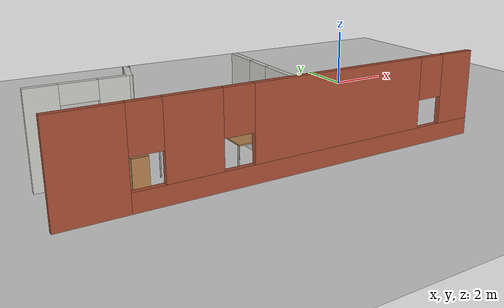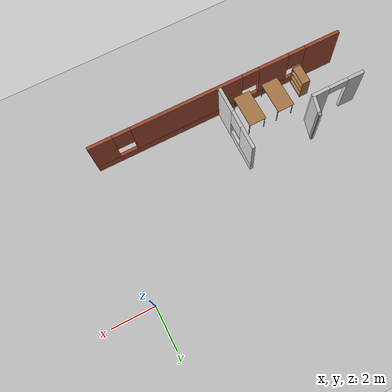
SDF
<sdf version="1.6">
 <world name="default">
  <model name="ground_plane">
   <static>1</static>
   <link name="link">
    <collision name="collision">
     <geometry><plane><normal>0 0 1</normal><size>100 100</size></plane></geometry>
     <surface><friction><ode><mu>100</mu><mu2>50</mu2></ode></friction></surface>
    </collision>
    <visual name="visual">
     <cast_shadows>0</cast_shadows>
     <geometry><plane><normal>0 0 1</normal><size>100 100</size></plane></geometry>
     <material>
      <script><uri>file://media/materials/scripts/gazebo.material</uri><name>Gazebo/Grey</name></script>
     </material>
    </visual>
   </link>
  </model>
  <model name="Building">
   <link name="Wall_1">
    <pose>-0.039438 -5.95 0 0 -0 0</pose>
    <visual name="Wall_1_Visual_4">
     <pose>5.31994 0 1.5 0 -0 0</pose>
     <geometry><box><size>1.11013 0.15 2</size></box></geometry>
     <material>
      <script><uri>file://media/materials/scripts/gazebo.material</uri><name>Gazebo/Bricks</name></script>
      <ambient>1 1 1 1</ambient>
      <shader type="pixel"/>
      <diffuse>1 1 1 1</diffuse>
      <specular>0.2 0.2 0.2 1</specular>
      <emissive>0 0 0 1</emissive>
     </material>
     <meta><layer>0</layer></meta>
    </visual>
    <visual name="Wall_1_Visual_0">
     <pose>-5.03898 0 1.25 0 -0 0</pose>
     <geometry><box><size>1.67205 0.15 2.5</size></box></geometry>
     <material>
      <script><uri>file://media/materials/scripts/gazebo.material</uri><name>Gazebo/Bricks</name></script>
      <ambient>1 1 1 1</ambient>
      <shader type="pixel"/>
      <diffuse>1 1 1 1</diffuse>
      <specular>0.2 0.2 0.2 1</specular>
      <emissive>0 0 0 1</emissive>
     </material>
     <meta><layer>0</layer></meta>
    </visual>
    <visual name="Wall_1_Visual_1">
     <pose>0.836024 0 0.25 0 -0 0</pose>
     <geometry><box><size>10.078 0.15 0.5</size></box></geometry>
     <material>
      <script><uri>file://media/materials/scripts/gazebo.material</uri><name>Gazebo/Bricks</name></script>
      <ambient>1 1 1 1</ambient>
      <shader type="pixel"/>
      <diffuse>1 1 1 1</diffuse>
      <specular>0.2 0.2 0.2 1</specular>
      <emissive>0 0 0 1</emissive>
     </material>
     <meta><layer>0</layer></meta>
    </visual>
    <visual name="Wall_1_Visual_2">
     <pose>-2.69545 0 1.5 0 -0 0</pose>
     <geometry><box><size>1.415 0.15 2</size></box></geometry>
     <material>
      <script><uri>file://media/materials/scripts/gazebo.material</uri><name>Gazebo/Bricks</name></script>
      <ambient>1 1 1 1</ambient>
      <shader type="pixel"/>
      <diffuse>1 1 1 1</diffuse>
      <specular>0.2 0.2 0.2 1</specular>
      <emissive>0 0 0 1</emissive>
     </material>
     <meta><layer>0</layer></meta>
    </visual>
    <visual name="Wall_1_Visual_3">
     <pose>1.38846 0 1.5 0 -0 0</pose>
     <geometry><box><size>5.15282 0.15 2</size></box></geometry>
     <material>
      <script><uri>file://media/materials/scripts/gazebo.material</uri><name>Gazebo/Bricks</name></script>
      <ambient>1 1 1 1</ambient>
      <shader type="pixel"/>
      <diffuse>1 1 1 1</diffuse>
      <specular>0.2 0.2 0.2 1</specular>
      <emissive>0 0 0 1</emissive>
     </material>
     <meta><layer>0</layer></meta>
    </visual>
    <visual name="Wall_1_Visual_5">
     <pose>-3.80295 0 1.9 0 -0 0</pose>
     <geometry><box><size>0.8 0.15 1.2</size></box></geometry>
     <material>
      <script><uri>file://media/materials/scripts/gazebo.material</uri><name>Gazebo/Bricks</name></script>
      <ambient>1 1 1 1</ambient>
      <shader type="pixel"/>
      <diffuse>1 1 1 1</diffuse>
      <specular>0.2 0.2 0.2 1</specular>
      <emissive>0 0 0 1</emissive>
     </material>
     <meta><layer>0</layer></meta>
    </visual>
    <visual name="Wall_1_Visual_6">
     <pose>-1.58795 0 1.9 0 -0 0</pose>
     <geometry><box><size>0.8 0.15 1.2</size></box></geometry>
     <material>
      <script><uri>file://media/materials/scripts/gazebo.material</uri><name>Gazebo/Bricks</name></script>
      <ambient>1 1 1 1</ambient>
      <shader type="pixel"/>
      <diffuse>1 1 1 1</diffuse>
      <specular>0.2 0.2 0.2 1</specular>
      <emissive>0 0 0 1</emissive>
     </material>
     <meta><layer>0</layer></meta>
    </visual>
    <visual name="Wall_1_Visual_7">
     <pose>4.36487 0 1.9 0 -0 0</pose>
     <geometry><box><size>0.8 0.15 1.2</size></box></geometry>
     <material>
      <script><uri>file://media/materials/scripts/gazebo.material</uri><name>Gazebo/Bricks</name></script>
      <ambient>1 1 1 1</ambient>
      <shader type="pixel"/>
      <diffuse>1 1 1 1</diffuse>
      <specular>0.2 0.2 0.2 1</specular>
      <emissive>0 0 0 1</emissive>
     </material>
     <meta><layer>0</layer></meta>
    </visual>
    <collision name="Wall_1_Collision_0">
     <pose>-5.03898 0 1.25 0 -0 0</pose>
     <geometry><box><size>1.67205 0.15 2.5</size></box></geometry>
     <surface>
      <friction>
       <ode><mu>1</mu><mu2>1</mu2><fdir1>0 0 0</fdir1><slip1>0</slip1><slip2>0</slip2></ode>
       <torsional>
        <coefficient>1</coefficient>
        <patch_radius>0</patch_radius>
        <surface_radius>0</surface_radius>
        <use_patch_radius>1</use_patch_radius>
        <ode><slip>0</slip></ode>
       </torsional>
      </friction>
      <bounce><restitution_coefficient>0</restitution_coefficient><threshold>1e+06</threshold></bounce>
      <contact>
       <collide_without_contact>0</collide_without_contact>
       <collide_without_contact_bitmask>1</collide_without_contact_bitmask>
       <collide_bitmask>1</collide_bitmask>
       <ode>
        <soft_cfm>0</soft_cfm>
        <soft_erp>0.2</soft_erp>
        <kp>1e+13</kp>
        <kd>1</kd>
        <max_vel>0.01</max_vel>
        <min_depth>0</min_depth>
       </ode>
       <bullet>
        <split_impulse>1</split_impulse>
        <split_impulse_penetration_threshold>-0.01</split_impulse_penetration_threshold>
        <soft_cfm>0</soft_cfm>
        <soft_erp>0.2</soft_erp>
        <kp>1e+13</kp>
        <kd>1</kd>
       </bullet>
      </contact>
     </surface>
    </collision>
    <collision name="Wall_1_Collision_1">
     <pose>0.836024 0 0.25 0 -0 0</pose>
     <geometry><box><size>10.078 0.15 0.5</size></box></geometry>
     <surface>
      <friction>
       <ode><mu>1</mu><mu2>1</mu2><fdir1>0 0 0</fdir1><slip1>0</slip1><slip2>0</slip2></ode>
       <torsional>
        <coefficient>1</coefficient>
        <patch_radius>0</patch_radius>
        <surface_radius>0</surface_radius>
        <use_patch_radius>1</use_patch_radius>
        <ode><slip>0</slip></ode>
       </torsional>
      </friction>
      <bounce><restitution_coefficient>0</restitution_coefficient><threshold>1e+06</threshold></bounce>
      <contact>
       <collide_without_contact>0</collide_without_contact>
       <collide_without_contact_bitmask>1</collide_without_contact_bitmask>
       <collide_bitmask>1</collide_bitmask>
       <ode>
        <soft_cfm>0</soft_cfm>
        <soft_erp>0.2</soft_erp>
        <kp>1e+13</kp>
        <kd>1</kd>
        <max_vel>0.01</max_vel>
        <min_depth>0</min_depth>
       </ode>
       <bullet>
        <split_impulse>1</split_impulse>
        <split_impulse_penetration_threshold>-0.01</split_impulse_penetration_threshold>
        <soft_cfm>0</soft_cfm>
        <soft_erp>0.2</soft_erp>
        <kp>1e+13</kp>
        <kd>1</kd>
       </bullet>
      </contact>
     </surface>
    </collision>
    <collision name="Wall_1_Collision_5">
     <pose>-3.80295 0 1.9 0 -0 0</pose>
     <geometry><box><size>0.8 0.15 1.2</size></box></geometry>
     <surface>
      <friction>
       <ode><mu>1</mu><mu2>1</mu2><fdir1>0 0 0</fdir1><slip1>0</slip1><slip2>0</slip2></ode>
       <torsional>
        <coefficient>1</coefficient>
        <patch_radius>0</patch_radius>
        <surface_radius>0</surface_radius>
        <use_patch_radius>1</use_patch_radius>
        <ode><slip>0</slip></ode>
       </torsional>
      </friction>
      <bounce><restitution_coefficient>0</restitution_coefficient><threshold>1e+06</threshold></bounce>
      <contact>
       <collide_without_contact>0</collide_without_contact>
       <collide_without_contact_bitmask>1</collide_without_contact_bitmask>
       <collide_bitmask>1</collide_bitmask>
       <ode>
        <soft_cfm>0</soft_cfm>
        <soft_erp>0.2</soft_erp>
        <kp>1e+13</kp>
        <kd>1</kd>
        <max_vel>0.01</max_vel>
        <min_depth>0</min_depth>
       </ode>
       <bullet>
        <split_impulse>1</split_impulse>
        <split_impulse_penetration_threshold>-0.01</split_impulse_penetration_threshold>
        <soft_cfm>0</soft_cfm>
        <soft_erp>0.2</soft_erp>
        <kp>1e+13</kp>
        <kd>1</kd>
       </bullet>
      </contact>
     </surface>
    </collision>
    <collision name="Wall_1_Collision_2">
     <pose>-2.69545 0 1.5 0 -0 0</pose>
     <geometry><box><size>1.415 0.15 2</size></box></geometry>
     <surface>
      <friction>
       <ode><mu>1</mu><mu2>1</mu2><fdir1>0 0 0</fdir1><slip1>0</slip1><slip2>0</slip2></ode>
       <torsional>
        <coefficient>1</coefficient>
        <patch_radius>0</patch_radius>
        <surface_radius>0</surface_radius>
        <use_patch_radius>1</use_patch_radius>
        <ode><slip>0</slip></ode>
       </torsional>
      </friction>
      <bounce><restitution_coefficient>0</restitution_coefficient><threshold>1e+06</threshold></bounce>
      <contact>
       <collide_without_contact>0</collide_without_contact>
       <collide_without_contact_bitmask>1</collide_without_contact_bitmask>
       <collide_bitmask>1</collide_bitmask>
       <ode>
        <soft_cfm>0</soft_cfm>
        <soft_erp>0.2</soft_erp>
        <kp>1e+13</kp>
        <kd>1</kd>
        <max_vel>0.01</max_vel>
        <min_depth>0</min_depth>
       </ode>
       <bullet>
        <split_impulse>1</split_impulse>
        <split_impulse_penetration_threshold>-0.01</split_impulse_penetration_threshold>
        <soft_cfm>0</soft_cfm>
        <soft_erp>0.2</soft_erp>
        <kp>1e+13</kp>
        <kd>1</kd>
       </bullet>
      </contact>
     </surface>
    </collision>
    <collision name="Wall_1_Collision_3">
     <pose>1.38846 0 1.5 0 -0 0</pose>
     <geometry><box><size>5.15282 0.15 2</size></box></geometry>
     <surface>
      <friction>
       <ode><mu>1</mu><mu2>1</mu2><fdir1>0 0 0</fdir1><slip1>0</slip1><slip2>0</slip2></ode>
       <torsional>
        <coefficient>1</coefficient>
        <patch_radius>0</patch_radius>
        <surface_radius>0</surface_radius>
        <use_patch_radius>1</use_patch_radius>
        <ode><slip>0</slip></ode>
       </torsional>
      </friction>
      <bounce><restitution_coefficient>0</restitution_coefficient><threshold>1e+06</threshold></bounce>
      <contact>
       <collide_without_contact>0</collide_without_contact>
       <collide_without_contact_bitmask>1</collide_without_contact_bitmask>
       <collide_bitmask>1</collide_bitmask>
       <ode>
        <soft_cfm>0</soft_cfm>
        <soft_erp>0.2</soft_erp>
        <kp>1e+13</kp>
        <kd>1</kd>
        <max_vel>0.01</max_vel>
        <min_depth>0</min_depth>
       </ode>
       <bullet>
        <split_impulse>1</split_impulse>
        <split_impulse_penetration_threshold>-0.01</split_impulse_penetration_threshold>
        <soft_cfm>0</soft_cfm>
        <soft_erp>0.2</soft_erp>
        <kp>1e+13</kp>
        <kd>1</kd>
       </bullet>
      </contact>
     </surface>
    </collision>
    <collision name="Wall_1_Collision_4">
     <pose>5.31994 0 1.5 0 -0 0</pose>
     <geometry><box><size>1.11013 0.15 2</size></box></geometry>
     <surface>
      <friction>
       <ode><mu>1</mu><mu2>1</mu2><fdir1>0 0 0</fdir1><slip1>0</slip1><slip2>0</slip2></ode>
       <torsional>
        <coefficient>1</coefficient>
        <patch_radius>0</patch_radius>
        <surface_radius>0</surface_radius>
        <use_patch_radius>1</use_patch_radius>
        <ode><slip>0</slip></ode>
       </torsional>
      </friction>
      <bounce><restitution_coefficient>0</restitution_coefficient><threshold>1e+06</threshold></bounce>
      <contact>
       <collide_without_contact>0</collide_without_contact>
       <collide_without_contact_bitmask>1</collide_without_contact_bitmask>
       <collide_bitmask>1</collide_bitmask>
       <ode>
        <soft_cfm>0</soft_cfm>
        <soft_erp>0.2</soft_erp>
        <kp>1e+13</kp>
        <kd>1</kd>
        <max_vel>0.01</max_vel>
        <min_depth>0</min_depth>
       </ode>
       <bullet>
        <split_impulse>1</split_impulse>
        <split_impulse_penetration_threshold>-0.01</split_impulse_penetration_threshold>
        <soft_cfm>0</soft_cfm>
        <soft_erp>0.2</soft_erp>
        <kp>1e+13</kp>
        <kd>1</kd>
       </bullet>
      </contact>
     </surface>
    </collision>
    <collision name="Wall_1_Collision_6">
     <pose>-1.58795 0 1.9 0 -0 0</pose>
     <geometry><box><size>0.8 0.15 1.2</size></box></geometry>
     <surface>
      <friction>
       <ode><mu>1</mu><mu2>1</mu2><fdir1>0 0 0</fdir1><slip1>0</slip1><slip2>0</slip2></ode>
       <torsional>
        <coefficient>1</coefficient>
        <patch_radius>0</patch_radius>
        <surface_radius>0</surface_radius>
        <use_patch_radius>1</use_patch_radius>
        <ode><slip>0</slip></ode>
       </torsional>
      </friction>
      <bounce><restitution_coefficient>0</restitution_coefficient><threshold>1e+06</threshold></bounce>
      <contact>
       <collide_without_contact>0</collide_without_contact>
       <collide_without_contact_bitmask>1</collide_without_contact_bitmask>
       <collide_bitmask>1</collide_bitmask>
       <ode>
        <soft_cfm>0</soft_cfm>
        <soft_erp>0.2</soft_erp>
        <kp>1e+13</kp>
        <kd>1</kd>
        <max_vel>0.01</max_vel>
        <min_depth>0</min_depth>
       </ode>
       <bullet>
        <split_impulse>1</split_impulse>
        <split_impulse_penetration_threshold>-0.01</split_impulse_penetration_threshold>
        <soft_cfm>0</soft_cfm>
        <soft_erp>0.2</soft_erp>
        <kp>1e+13</kp>
        <kd>1</kd>
       </bullet>
      </contact>
     </surface>
    </collision>
    <collision name="Wall_1_Collision_7">
     <pose>4.36487 0 1.9 0 -0 0</pose>
     <geometry><box><size>0.8 0.15 1.2</size></box></geometry>
     <surface>
      <friction>
       <ode><mu>1</mu><mu2>1</mu2><fdir1>0 0 0</fdir1><slip1>0</slip1><slip2>0</slip2></ode>
       <torsional>
        <coefficient>1</coefficient>
        <patch_radius>0</patch_radius>
        <surface_radius>0</surface_radius>
        <use_patch_radius>1</use_patch_radius>
        <ode><slip>0</slip></ode>
       </torsional>
      </friction>
      <bounce><restitution_coefficient>0</restitution_coefficient><threshold>1e+06</threshold></bounce>
      <contact>
       <collide_without_contact>0</collide_without_contact>
       <collide_without_contact_bitmask>1</collide_without_contact_bitmask>
       <collide_bitmask>1</collide_bitmask>
       <ode>
        <soft_cfm>0</soft_cfm>
        <soft_erp>0.2</soft_erp>
        <kp>1e+13</kp>
        <kd>1</kd>
        <max_vel>0.01</max_vel>
        <min_depth>0</min_depth>
       </ode>
       <bullet>
        <split_impulse>1</split_impulse>
        <split_impulse_penetration_threshold>-0.01</split_impulse_penetration_threshold>
        <soft_cfm>0</soft_cfm>
        <soft_erp>0.2</soft_erp>
        <kp>1e+13</kp>
        <kd>1</kd>
       </bullet>
      </contact>
     </surface>
    </collision>
   </link>
   <link name="Wall_12">
    <pose>-0.133296 -4.39447 0 0 -0 1.5708</pose>
    <visual name="Wall_12_Visual_0">
     <pose>-0.916045 0 1.25 0 -0 0</pose>
     <geometry><box><size>1.16791 0.15 2.5</size></box></geometry>
     <material>
      <script><uri>file://media/materials/scripts/gazebo.material</uri><name>Gazebo/CeilingTiled</name></script>
      <ambient>0.760784 0.662745 0.627451 1</ambient>
      <shader type="pixel"/>
      <diffuse>1 1 1 1</diffuse>
      <specular>0 0 0 1</specular>
      <emissive>0 0 0 1</emissive>
     </material>
     <meta><layer>0</layer></meta>
    </visual>
    <visual name="Wall_12_Visual_1">
     <pose>0.583955 0 0.25 0 -0 0</pose>
     <geometry><box><size>1.83209 0.15 0.5</size></box></geometry>
     <material>
      <script><uri>file://media/materials/scripts/gazebo.material</uri><name>Gazebo/CeilingTiled</name></script>
      <ambient>0.760784 0.662745 0.627451 1</ambient>
      <shader type="pixel"/>
      <diffuse>1 1 1 1</diffuse>
      <specular>0 0 0 1</specular>
      <emissive>0 0 0 1</emissive>
     </material>
     <meta><layer>0</layer></meta>
    </visual>
    <visual name="Wall_12_Visual_2">
     <pose>0.983955 0 1.5 0 -0 0</pose>
     <geometry><box><size>1.03209 0.15 2</size></box></geometry>
     <material>
      <script><uri>file://media/materials/scripts/gazebo.material</uri><name>Gazebo/CeilingTiled</name></script>
      <ambient>0.760784 0.662745 0.627451 1</ambient>
      <shader type="pixel"/>
      <diffuse>1 1 1 1</diffuse>
      <specular>0 0 0 1</specular>
      <emissive>0 0 0 1</emissive>
     </material>
     <meta><layer>0</layer></meta>
    </visual>
    <visual name="Wall_12_Visual_3">
     <pose>0.06791 0 1.9 0 -0 0</pose>
     <geometry><box><size>0.8 0.15 1.2</size></box></geometry>
     <material>
      <script><uri>file://media/materials/scripts/gazebo.material</uri><name>Gazebo/CeilingTiled</name></script>
      <ambient>0.760784 0.662745 0.627451 1</ambient>
      <shader type="pixel"/>
      <diffuse>1 1 1 1</diffuse>
      <specular>0 0 0 1</specular>
      <emissive>0 0 0 1</emissive>
     </material>
     <meta><layer>0</layer></meta>
    </visual>
    <collision name="Wall_12_Collision_0">
     <pose>-0.916045 0 1.25 0 -0 0</pose>
     <geometry><box><size>1.16791 0.15 2.5</size></box></geometry>
     <surface>
      <friction>
       <ode><mu>1</mu><mu2>1</mu2><fdir1>0 0 0</fdir1><slip1>0</slip1><slip2>0</slip2></ode>
       <torsional>
        <coefficient>1</coefficient>
        <patch_radius>0</patch_radius>
        <surface_radius>0</surface_radius>
        <use_patch_radius>1</use_patch_radius>
        <ode><slip>0</slip></ode>
       </torsional>
      </friction>
      <bounce><restitution_coefficient>0</restitution_coefficient><threshold>1e+06</threshold></bounce>
      <contact>
       <collide_without_contact>0</collide_without_contact>
       <collide_without_contact_bitmask>1</collide_without_contact_bitmask>
       <collide_bitmask>1</collide_bitmask>
       <ode>
        <soft_cfm>0</soft_cfm>
        <soft_erp>0.2</soft_erp>
        <kp>1e+13</kp>
        <kd>1</kd>
        <max_vel>0.01</max_vel>
        <min_depth>0</min_depth>
       </ode>
       <bullet>
        <split_impulse>1</split_impulse>
        <split_impulse_penetration_threshold>-0.01</split_impulse_penetration_threshold>
        <soft_cfm>0</soft_cfm>
        <soft_erp>0.2</soft_erp>
        <kp>1e+13</kp>
        <kd>1</kd>
       </bullet>
      </contact>
     </surface>
    </collision>
    <collision name="Wall_12_Collision_1">
     <pose>0.583955 0 0.25 0 -0 0</pose>
     <geometry><box><size>1.83209 0.15 0.5</size></box></geometry>
     <surface>
      <friction>
       <ode><mu>1</mu><mu2>1</mu2><fdir1>0 0 0</fdir1><slip1>0</slip1><slip2>0</slip2></ode>
       <torsional>
        <coefficient>1</coefficient>
        <patch_radius>0</patch_radius>
        <surface_radius>0</surface_radius>
        <use_patch_radius>1</use_patch_radius>
        <ode><slip>0</slip></ode>
       </torsional>
      </friction>
      <bounce><restitution_coefficient>0</restitution_coefficient><threshold>1e+06</threshold></bounce>
      <contact>
       <collide_without_contact>0</collide_without_contact>
       <collide_without_contact_bitmask>1</collide_without_contact_bitmask>
       <collide_bitmask>1</collide_bitmask>
       <ode>
        <soft_cfm>0</soft_cfm>
        <soft_erp>0.2</soft_erp>
        <kp>1e+13</kp>
        <kd>1</kd>
        <max_vel>0.01</max_vel>
        <min_depth>0</min_depth>
       </ode>
       <bullet>
        <split_impulse>1</split_impulse>
        <split_impulse_penetration_threshold>-0.01</split_impulse_penetration_threshold>
        <soft_cfm>0</soft_cfm>
        <soft_erp>0.2</soft_erp>
        <kp>1e+13</kp>
        <kd>1</kd>
       </bullet>
      </contact>
     </surface>
    </collision>
    <collision name="Wall_12_Collision_2">
     <pose>0.983955 0 1.5 0 -0 0</pose>
     <geometry><box><size>1.03209 0.15 2</size></box></geometry>
     <surface>
      <friction>
       <ode><mu>1</mu><mu2>1</mu2><fdir1>0 0 0</fdir1><slip1>0</slip1><slip2>0</slip2></ode>
       <torsional>
        <coefficient>1</coefficient>
        <patch_radius>0</patch_radius>
        <surface_radius>0</surface_radius>
        <use_patch_radius>1</use_patch_radius>
        <ode><slip>0</slip></ode>
       </torsional>
      </friction>
      <bounce><restitution_coefficient>0</restitution_coefficient><threshold>1e+06</threshold></bounce>
      <contact>
       <collide_without_contact>0</collide_without_contact>
       <collide_without_contact_bitmask>1</collide_without_contact_bitmask>
       <collide_bitmask>1</collide_bitmask>
       <ode>
        <soft_cfm>0</soft_cfm>
        <soft_erp>0.2</soft_erp>
        <kp>1e+13</kp>
        <kd>1</kd>
        <max_vel>0.01</max_vel>
        <min_depth>0</min_depth>
       </ode>
       <bullet>
        <split_impulse>1</split_impulse>
        <split_impulse_penetration_threshold>-0.01</split_impulse_penetration_threshold>
        <soft_cfm>0</soft_cfm>
        <soft_erp>0.2</soft_erp>
        <kp>1e+13</kp>
        <kd>1</kd>
       </bullet>
      </contact>
     </surface>
    </collision>
    <collision name="Wall_12_Collision_3">
     <pose>0.06791 0 1.9 0 -0 0</pose>
     <geometry><box><size>0.8 0.15 1.2</size></box></geometry>
     <surface>
      <friction>
       <ode><mu>1</mu><mu2>1</mu2><fdir1>0 0 0</fdir1><slip1>0</slip1><slip2>0</slip2></ode>
       <torsional>
        <coefficient>1</coefficient>
        <patch_radius>0</patch_radius>
        <surface_radius>0</surface_radius>
        <use_patch_radius>1</use_patch_radius>
        <ode><slip>0</slip></ode>
       </torsional>
      </friction>
      <bounce><restitution_coefficient>0</restitution_coefficient><threshold>1e+06</threshold></bounce>
      <contact>
       <collide_without_contact>0</collide_without_contact>
       <collide_without_contact_bitmask>1</collide_without_contact_bitmask>
       <collide_bitmask>1</collide_bitmask>
       <ode>
        <soft_cfm>0</soft_cfm>
        <soft_erp>0.2</soft_erp>
        <kp>1e+13</kp>
        <kd>1</kd>
        <max_vel>0.01</max_vel>
        <min_depth>0</min_depth>
       </ode>
       <bullet>
        <split_impulse>1</split_impulse>
        <split_impulse_penetration_threshold>-0.01</split_impulse_penetration_threshold>
        <soft_cfm>0</soft_cfm>
        <soft_erp>0.2</soft_erp>
        <kp>1e+13</kp>
        <kd>1</kd>
       </bullet>
      </contact>
     </surface>
    </collision>
   </link>
   <link name="Wall_30">
    <pose>-4.61314 -3.81517 0 0 -0 0</pose>
    <visual name="Wall_30_Visual_0">
     <pose>-0.862208 0 1.25 0 -0 0</pose>
     <geometry><box><size>0.775583 0.15 2.5</size></box></geometry>
     <material>
      <script><uri>file://media/materials/scripts/gazebo.material</uri><name>Gazebo/CeilingTiled</name></script>
      <ambient>0.760784 0.662745 0.627451 1</ambient>
      <shader type="pixel"/>
      <diffuse>1 1 1 1</diffuse>
      <specular>0 0 0 1</specular>
      <emissive>0 0 0 1</emissive>
     </material>
     <meta><layer>0</layer></meta>
    </visual>
    <visual name="Wall_30_Visual_1">
     <pose>0.837792 0 1.25 0 -0 0</pose>
     <geometry><box><size>0.824417 0.15 2.5</size></box></geometry>
     <material>
      <script><uri>file://media/materials/scripts/gazebo.material</uri><name>Gazebo/CeilingTiled</name></script>
      <ambient>0.760784 0.662745 0.627451 1</ambient>
      <shader type="pixel"/>
      <diffuse>1 1 1 1</diffuse>
      <specular>0 0 0 1</specular>
      <emissive>0 0 0 1</emissive>
     </material>
     <meta><layer>0</layer></meta>
    </visual>
    <visual name="Wall_30_Visual_2">
     <pose>-0.024417 0 2.25 0 -0 0</pose>
     <geometry><box><size>0.9 0.15 0.5</size></box></geometry>
     <material>
      <script><uri>file://media/materials/scripts/gazebo.material</uri><name>Gazebo/CeilingTiled</name></script>
      <ambient>0.760784 0.662745 0.627451 1</ambient>
      <shader type="pixel"/>
      <diffuse>1 1 1 1</diffuse>
      <specular>0 0 0 1</specular>
      <emissive>0 0 0 1</emissive>
     </material>
     <meta><layer>0</layer></meta>
    </visual>
    <collision name="Wall_30_Collision_0">
     <pose>-0.862208 0 1.25 0 -0 0</pose>
     <geometry><box><size>0.775583 0.15 2.5</size></box></geometry>
     <surface>
      <friction>
       <ode><mu>1</mu><mu2>1</mu2><fdir1>0 0 0</fdir1><slip1>0</slip1><slip2>0</slip2></ode>
       <torsional>
        <coefficient>1</coefficient>
        <patch_radius>0</patch_radius>
        <surface_radius>0</surface_radius>
        <use_patch_radius>1</use_patch_radius>
        <ode><slip>0</slip></ode>
       </torsional>
      </friction>
      <bounce><restitution_coefficient>0</restitution_coefficient><threshold>1e+06</threshold></bounce>
      <contact>
       <collide_without_contact>0</collide_without_contact>
       <collide_without_contact_bitmask>1</collide_without_contact_bitmask>
       <collide_bitmask>1</collide_bitmask>
       <ode>
        <soft_cfm>0</soft_cfm>
        <soft_erp>0.2</soft_erp>
        <kp>1e+13</kp>
        <kd>1</kd>
        <max_vel>0.01</max_vel>
        <min_depth>0</min_depth>
       </ode>
       <bullet>
        <split_impulse>1</split_impulse>
        <split_impulse_penetration_threshold>-0.01</split_impulse_penetration_threshold>
        <soft_cfm>0</soft_cfm>
        <soft_erp>0.2</soft_erp>
        <kp>1e+13</kp>
        <kd>1</kd>
       </bullet>
      </contact>
     </surface>
    </collision>
    <collision name="Wall_30_Collision_1">
     <pose>0.837792 0 1.25 0 -0 0</pose>
     <geometry><box><size>0.824417 0.15 2.5</size></box></geometry>
     <surface>
      <friction>
       <ode><mu>1</mu><mu2>1</mu2><fdir1>0 0 0</fdir1><slip1>0</slip1><slip2>0</slip2></ode>
       <torsional>
        <coefficient>1</coefficient>
        <patch_radius>0</patch_radius>
        <surface_radius>0</surface_radius>
        <use_patch_radius>1</use_patch_radius>
        <ode><slip>0</slip></ode>
       </torsional>
      </friction>
      <bounce><restitution_coefficient>0</restitution_coefficient><threshold>1e+06</threshold></bounce>
      <contact>
       <collide_without_contact>0</collide_without_contact>
       <collide_without_contact_bitmask>1</collide_without_contact_bitmask>
       <collide_bitmask>1</collide_bitmask>
       <ode>
        <soft_cfm>0</soft_cfm>
        <soft_erp>0.2</soft_erp>
        <kp>1e+13</kp>
        <kd>1</kd>
        <max_vel>0.01</max_vel>
        <min_depth>0</min_depth>
       </ode>
       <bullet>
        <split_impulse>1</split_impulse>
        <split_impulse_penetration_threshold>-0.01</split_impulse_penetration_threshold>
        <soft_cfm>0</soft_cfm>
        <soft_erp>0.2</soft_erp>
        <kp>1e+13</kp>
        <kd>1</kd>
       </bullet>
      </contact>
     </surface>
    </collision>
    <collision name="Wall_30_Collision_2">
     <pose>-0.024417 0 2.25 0 -0 0</pose>
     <geometry><box><size>0.9 0.15 0.5</size></box></geometry>
     <surface>
      <friction>
       <ode><mu>1</mu><mu2>1</mu2><fdir1>0 0 0</fdir1><slip1>0</slip1><slip2>0</slip2></ode>
       <torsional>
        <coefficient>1</coefficient>
        <patch_radius>0</patch_radius>
        <surface_radius>0</surface_radius>
        <use_patch_radius>1</use_patch_radius>
        <ode><slip>0</slip></ode>
       </torsional>
      </friction>
      <bounce><restitution_coefficient>0</restitution_coefficient><threshold>1e+06</threshold></bounce>
      <contact>
       <collide_without_contact>0</collide_without_contact>
       <collide_without_contact_bitmask>1</collide_without_contact_bitmask>
       <collide_bitmask>1</collide_bitmask>
       <ode>
        <soft_cfm>0</soft_cfm>
        <soft_erp>0.2</soft_erp>
        <kp>1e+13</kp>
        <kd>1</kd>
        <max_vel>0.01</max_vel>
        <min_depth>0</min_depth>
       </ode>
       <bullet>
        <split_impulse>1</split_impulse>
        <split_impulse_penetration_threshold>-0.01</split_impulse_penetration_threshold>
        <soft_cfm>0</soft_cfm>
        <soft_erp>0.2</soft_erp>
        <kp>1e+13</kp>
        <kd>1</kd>
       </bullet>
      </contact>
     </surface>
    </collision>
   </link>
   <link name="Wall_31">
    <pose>-3.33572 -3.39232 0 0 -0 1.33316</pose>
    <visual name="Wall_31_Visual">
     <pose>0 0 1.25 0 -0 0</pose>
     <geometry><box><size>1.02015 0.15 2.5</size></box></geometry>
     <material>
      <script><uri>file://media/materials/scripts/gazebo.material</uri><name>Gazebo/CeilingTiled</name></script>
      <ambient>0.760784 0.662745 0.627451 1</ambient>
      <shader type="pixel"/>
      <diffuse>1 1 1 1</diffuse>
      <specular>0 0 0 1</specular>
      <emissive>0 0 0 1</emissive>
     </material>
     <meta><layer>0</layer></meta>
    </visual>
    <collision name="Wall_31_Collision">
     <pose>0 0 1.25 0 -0 0</pose>
     <geometry><box><size>1.02015 0.15 2.5</size></box></geometry>
     <surface>
      <friction>
       <ode><mu>1</mu><mu2>1</mu2><fdir1>0 0 0</fdir1><slip1>0</slip1><slip2>0</slip2></ode>
       <torsional>
        <coefficient>1</coefficient>
        <patch_radius>0</patch_radius>
        <surface_radius>0</surface_radius>
        <use_patch_radius>1</use_patch_radius>
        <ode><slip>0</slip></ode>
       </torsional>
      </friction>
      <bounce><restitution_coefficient>0</restitution_coefficient><threshold>1e+06</threshold></bounce>
      <contact>
       <collide_without_contact>0</collide_without_contact>
       <collide_without_contact_bitmask>1</collide_without_contact_bitmask>
       <collide_bitmask>1</collide_bitmask>
       <ode>
        <soft_cfm>0</soft_cfm>
        <soft_erp>0.2</soft_erp>
        <kp>1e+13</kp>
        <kd>1</kd>
        <max_vel>0.01</max_vel>
        <min_depth>0</min_depth>
       </ode>
       <bullet>
        <split_impulse>1</split_impulse>
        <split_impulse_penetration_threshold>-0.01</split_impulse_penetration_threshold>
        <soft_cfm>0</soft_cfm>
        <soft_erp>0.2</soft_erp>
        <kp>1e+13</kp>
        <kd>1</kd>
       </bullet>
      </contact>
     </surface>
    </collision>
   </link>
   <link name="Wall_32">
    <pose>-3.2333 -2.96947 0 0 -0 0</pose>
    <visual name="Wall_32_Visual">
     <pose>0 0 1.25 0 -0 0</pose>
     <geometry><box><size>0.15 0.15 2.5</size></box></geometry>
     <material>
      <script><uri>file://media/materials/scripts/gazebo.material</uri><name>Gazebo/Grey</name></script>
      <ambient>1 1 1 1</ambient>
      <shader type="pixel"/>
      <diffuse>0.7 0.7 0.7 1</diffuse>
      <specular>0.01 0.01 0.01 1</specular>
      <emissive>0 0 0 1</emissive>
     </material>
     <meta><layer>0</layer></meta>
    </visual>
    <collision name="Wall_32_Collision">
     <pose>0 0 1.25 0 -0 0</pose>
     <geometry><box><size>0.15 0.15 2.5</size></box></geometry>
     <surface>
      <friction>
       <ode><mu>1</mu><mu2>1</mu2><fdir1>0 0 0</fdir1><slip1>0</slip1><slip2>0</slip2></ode>
       <torsional>
        <coefficient>1</coefficient>
        <patch_radius>0</patch_radius>
        <surface_radius>0</surface_radius>
        <use_patch_radius>1</use_patch_radius>
        <ode><slip>0</slip></ode>
       </torsional>
      </friction>
      <bounce><restitution_coefficient>0</restitution_coefficient><threshold>1e+06</threshold></bounce>
      <contact>
       <collide_without_contact>0</collide_without_contact>
       <collide_without_contact_bitmask>1</collide_without_contact_bitmask>
       <collide_bitmask>1</collide_bitmask>
       <ode>
        <soft_cfm>0</soft_cfm>
        <soft_erp>0.2</soft_erp>
        <kp>1e+13</kp>
        <kd>1</kd>
        <max_vel>0.01</max_vel>
        <min_depth>0</min_depth>
       </ode>
       <bullet>
        <split_impulse>1</split_impulse>
        <split_impulse_penetration_threshold>-0.01</split_impulse_penetration_threshold>
        <soft_cfm>0</soft_cfm>
        <soft_erp>0.2</soft_erp>
        <kp>1e+13</kp>
        <kd>1</kd>
       </bullet>
      </contact>
     </surface>
    </collision>
   </link>
   <static>1</static>
   <pose>-6.1852 -0.576906 0 0 -0 0</pose>
  </model>
  <model name="table_1">
   <static>1</static>
   <link name="link">
    <collision name="surface">
     <pose>0 0 1 0 -0 0</pose>
     <geometry><box><size>1.5 0.8 0.03</size></box></geometry>
     <surface><friction><ode><mu>0.6</mu><mu2>0.6</mu2></ode></friction></surface>
    </collision>
    <visual name="visual1">
     <pose>0 0 1 0 -0 0</pose>
     <geometry><box><size>1.5 0.8 0.03</size></box></geometry>
     <material>
      <script><uri>file://media/materials/scripts/gazebo.material</uri><name>Gazebo/Wood</name></script>
     </material>
    </visual>
    <collision name="front_left_leg">
     <pose>0.68 0.38 0.5 0 -0 0</pose>
     <geometry><cylinder><radius>0.02</radius><length>1</length></cylinder></geometry>
    </collision>
    <visual name="front_left_leg">
     <pose>0.68 0.38 0.5 0 -0 0</pose>
     <geometry><cylinder><radius>0.02</radius><length>1</length></cylinder></geometry>
     <material>
      <script><uri>file://media/materials/scripts/gazebo.material</uri><name>Gazebo/Grey</name></script>
     </material>
    </visual>
    <collision name="front_right_leg">
     <pose>0.68 -0.38 0.5 0 -0 0</pose>
     <geometry><cylinder><radius>0.02</radius><length>1</length></cylinder></geometry>
    </collision>
    <visual name="front_right_leg">
     <pose>0.68 -0.38 0.5 0 -0 0</pose>
     <geometry><cylinder><radius>0.02</radius><length>1</length></cylinder></geometry>
     <material>
      <script><uri>file://media/materials/scripts/gazebo.material</uri><name>Gazebo/Grey</name></script>
     </material>
    </visual>
    <collision name="back_right_leg">
     <pose>-0.68 -0.38 0.5 0 -0 0</pose>
     <geometry><cylinder><radius>0.02</radius><length>1</length></cylinder></geometry>
    </collision>
    <visual name="back_right_leg">
     <pose>-0.68 -0.38 0.5 0 -0 0</pose>
     <geometry><cylinder><radius>0.02</radius><length>1</length></cylinder></geometry>
     <material>
      <script><uri>file://media/materials/scripts/gazebo.material</uri><name>Gazebo/Grey</name></script>
     </material>
    </visual>
    <collision name="back_left_leg">
     <pose>-0.68 0.38 0.5 0 -0 0</pose>
     <geometry><cylinder><radius>0.02</radius><length>1</length></cylinder></geometry>
    </collision>
    <visual name="back_left_leg">
     <pose>-0.68 0.38 0.5 0 -0 0</pose>
     <geometry><cylinder><radius>0.02</radius><length>1</length></cylinder></geometry>
     <material>
      <script><uri>file://media/materials/scripts/gazebo.material</uri><name>Gazebo/Grey</name></script>
     </material>
    </visual>
   </link>
   <pose>-7.38306 -5.69364 0 0 -0 1.5919</pose>
  </model>
  <model name="table_1_clone">
   <static>1</static>
   <link name="link">
    <collision name="surface">
     <pose>0 0 1 0 -0 0</pose>
     <geometry><box><size>1.5 0.8 0.03</size></box></geometry>
     <surface><friction><ode><mu>0.6</mu><mu2>0.6</mu2></ode></friction></surface>
    </collision>
    <visual name="visual1">
     <pose>0 0 1 0 -0 0</pose>
     <geometry><box><size>1.5 0.8 0.03</size></box></geometry>
     <material>
      <script><uri>file://media/materials/scripts/gazebo.material</uri><name>Gazebo/Wood</name></script>
     </material>
    </visual>
    <collision name="front_left_leg">
     <pose>0.68 0.38 0.5 0 -0 0</pose>
     <geometry><cylinder><radius>0.02</radius><length>1</length></cylinder></geometry>
    </collision>
    <visual name="front_left_leg">
     <pose>0.68 0.38 0.5 0 -0 0</pose>
     <geometry><cylinder><radius>0.02</radius><length>1</length></cylinder></geometry>
     <material>
      <script><uri>file://media/materials/scripts/gazebo.material</uri><name>Gazebo/Grey</name></script>
     </material>
    </visual>
    <collision name="front_right_leg">
     <pose>0.68 -0.38 0.5 0 -0 0</pose>
     <geometry><cylinder><radius>0.02</radius><length>1</length></cylinder></geometry>
    </collision>
    <visual name="front_right_leg">
     <pose>0.68 -0.38 0.5 0 -0 0</pose>
     <geometry><cylinder><radius>0.02</radius><length>1</length></cylinder></geometry>
     <material>
      <script><uri>file://media/materials/scripts/gazebo.material</uri><name>Gazebo/Grey</name></script>
     </material>
    </visual>
    <collision name="back_right_leg">
     <pose>-0.68 -0.38 0.5 0 -0 0</pose>
     <geometry><cylinder><radius>0.02</radius><length>1</length></cylinder></geometry>
    </collision>
    <visual name="back_right_leg">
     <pose>-0.68 -0.38 0.5 0 -0 0</pose>
     <geometry><cylinder><radius>0.02</radius><length>1</length></cylinder></geometry>
     <material>
      <script><uri>file://media/materials/scripts/gazebo.material</uri><name>Gazebo/Grey</name></script>
     </material>
    </visual>
    <collision name="back_left_leg">
     <pose>-0.68 0.38 0.5 0 -0 0</pose>
     <geometry><cylinder><radius>0.02</radius><length>1</length></cylinder></geometry>
    </collision>
    <visual name="back_left_leg">
     <pose>-0.68 0.38 0.5 0 -0 0</pose>
     <geometry><cylinder><radius>0.02</radius><length>1</length></cylinder></geometry>
     <material>
      <script><uri>file://media/materials/scripts/gazebo.material</uri><name>Gazebo/Grey</name></script>
     </material>
    </visual>
   </link>
   <pose>-8.79421 -5.70495 0 0 -0 1.5919</pose>
  </model>
  <model name="bookshelf_1">
   <static>1</static>
   <link name="link">
    <inertial><mass>1</mass></inertial>
    <collision name="back">
     <pose>0 0.005 0.6 0 -0 0</pose>
     <geometry><box><size>0.9 0.01 1.2</size></box></geometry>
    </collision>
    <visual name="visual1">
     <pose>0 0.005 0.6 0 -0 0</pose>
     <geometry><box><size>0.9 0.01 1.2</size></box></geometry>
     <material>
      <script><uri>file://media/materials/scripts/gazebo.material</uri><name>Gazebo/Wood</name></script>
     </material>
    </visual>
    <collision name="left_side">
     <pose>0.45 -0.195 0.6 0 -0 0</pose>
     <geometry><box><size>0.02 0.4 1.2</size></box></geometry>
    </collision>
    <visual name="visual2">
     <pose>0.45 -0.195 0.6 0 -0 0</pose>
     <geometry><box><size>0.02 0.4 1.2</size></box></geometry>
     <material>
      <script><uri>file://media/materials/scripts/gazebo.material</uri><name>Gazebo/Wood</name></script>
     </material>
    </visual>
    <collision name="right_side">
     <pose>-0.45 -0.195 0.6 0 -0 0</pose>
     <geometry><box><size>0.02 0.4 1.2</size></box></geometry>
    </collision>
    <visual name="visual3">
     <pose>-0.45 -0.195 0.6 0 -0 0</pose>
     <geometry><box><size>0.02 0.4 1.2</size></box></geometry>
     <material>
      <script><uri>file://media/materials/scripts/gazebo.material</uri><name>Gazebo/Wood</name></script>
     </material>
    </visual>
    <collision name="bottom">
     <pose>0 -0.195 0.03 0 -0 0</pose>
     <geometry><box><size>0.88 0.4 0.06</size></box></geometry>
    </collision>
    <visual name="visual4">
     <pose>0 -0.195 0.03 0 -0 0</pose>
     <geometry><box><size>0.88 0.4 0.06</size></box></geometry>
     <material>
      <script><uri>file://media/materials/scripts/gazebo.material</uri><name>Gazebo/Wood</name></script>
     </material>
    </visual>
    <collision name="top">
     <pose>0 -0.195 1.19 0 -0 0</pose>
     <geometry><box><size>0.88 0.4 0.02</size></box></geometry>
    </collision>
    <visual name="visual5">
     <pose>0 -0.195 1.19 0 -0 0</pose>
     <geometry><box><size>0.88 0.4 0.02</size></box></geometry>
     <material>
      <script><uri>file://media/materials/scripts/gazebo.material</uri><name>Gazebo/Wood</name></script>
     </material>
    </visual>
    <collision name="low_shelf">
     <pose>0 -0.195 0.43 0 -0 0</pose>
     <geometry><box><size>0.88 0.4 0.02</size></box></geometry>
    </collision>
    <visual name="visual6">
     <pose>0 -0.195 0.43 0 -0 0</pose>
     <geometry><box><size>0.88 0.4 0.02</size></box></geometry>
     <material>
      <script><uri>file://media/materials/scripts/gazebo.material</uri><name>Gazebo/Wood</name></script>
     </material>
    </visual>
    <collision name="high_shelf">
     <pose>0 -0.195 0.8 0 -0 0</pose>
     <geometry><box><size>0.88 0.4 0.02</size></box></geometry>
    </collision>
    <visual name="visual7">
     <pose>0 -0.195 0.8 0 -0 0</pose>
     <geometry><box><size>0.88 0.4 0.02</size></box></geometry>
     <material>
      <script><uri>file://media/materials/scripts/gazebo.material</uri><name>Gazebo/Wood</name></script>
     </material>
    </visual>
   </link>
   <pose>-10.3346 -6.00448 0 0 -0 1.56957</pose>
  </model>
 </world>
</sdf>
